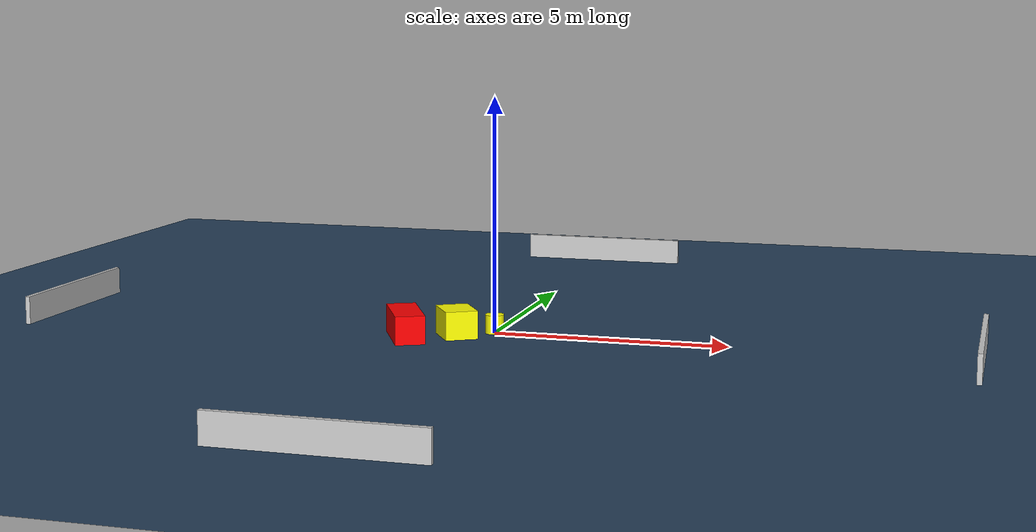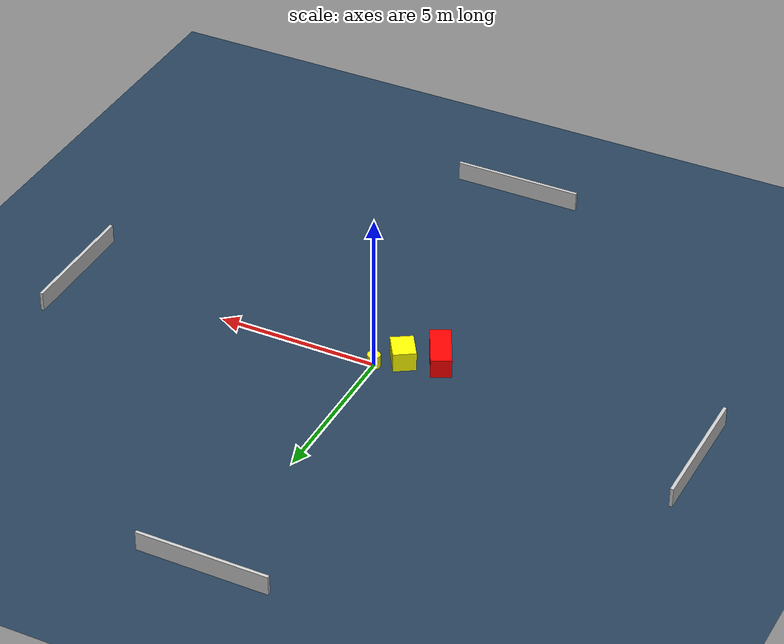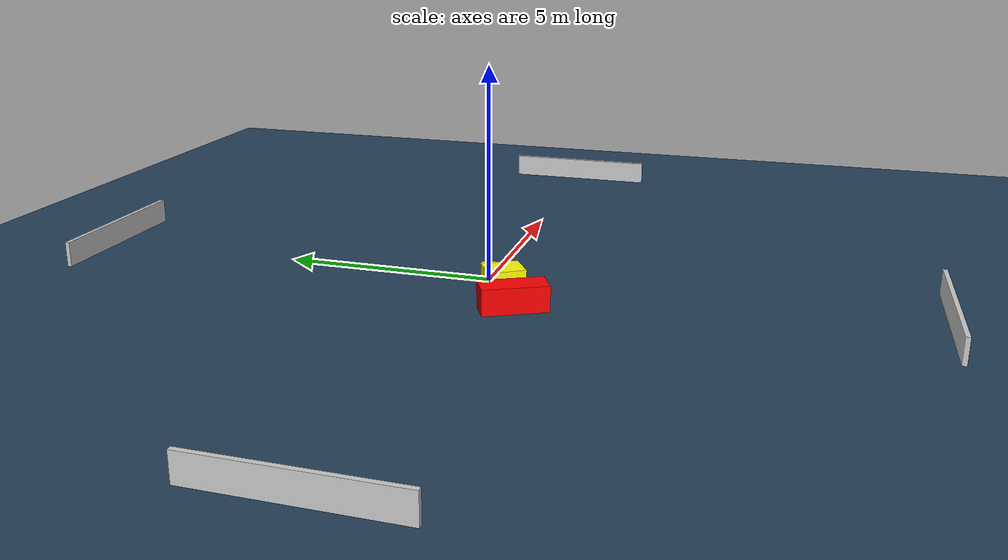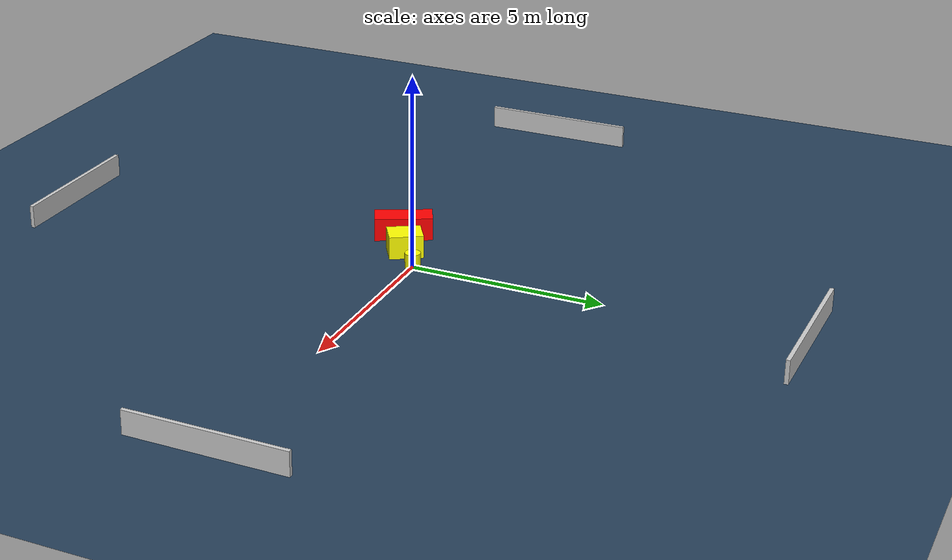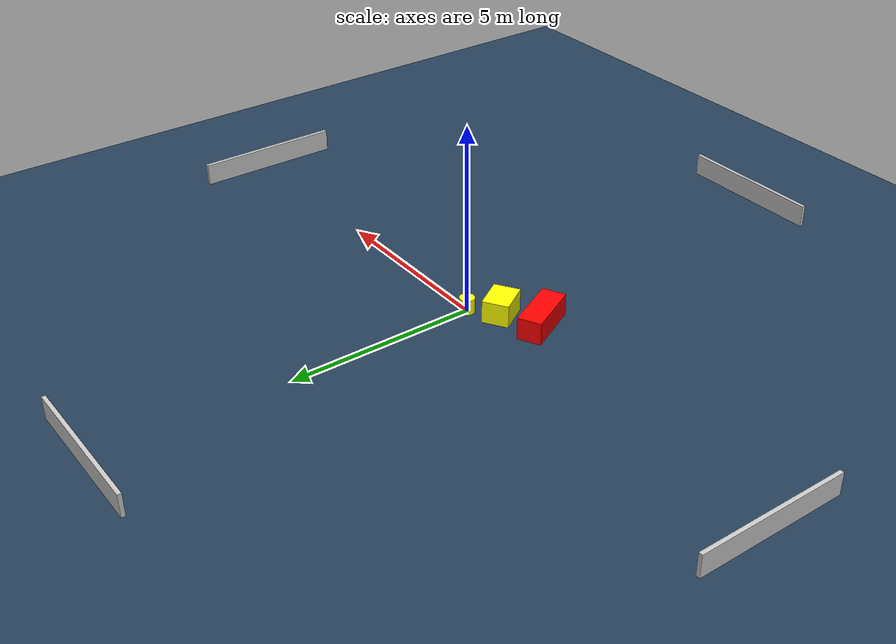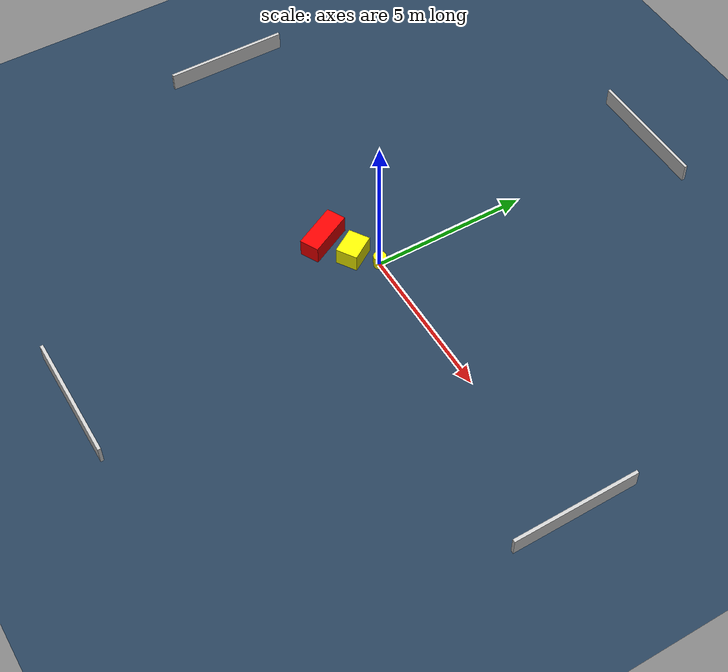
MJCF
<?xml version="1.0" ?>
<mujoco model="generated_environment">
  <option timestep="0.01" integrator="RK4" cone="elliptic"/>
  <default>
    <geom density="1"/>
  </default>
  <asset>
    <texture builtin="gradient" height="3072" name="skybox" rgb1="0.3 0.5 0.7" rgb2="0 0 0" type="skybox" width="512"/>
    <texture builtin="checker" height="300" name="groundplane" rgb1="0.2 0.3 0.4" rgb2="0.1 0.2 0.3" type="2d" width="300"/>
    <material name="groundplane" reflectance="0.2" texrepeat="5 5" texture="groundplane"/>
  </asset>
  <worldbody>
    <light dir="0 0 -1" directional="true" pos="0 0 1.5"/>
    <geom condim="3" friction="0.5 0.005 0.001" material="groundplane" name="floor" pos="0 0 0" size="0 0 0.05" type="plane"/>
    <body name="walls">
      <geom name="wall_1" condim="4" pos="-10.0 0.0 0.3" rgba="0.800000011920929 0.800000011920929 0.800000011920929 1.0" size="0.05 2.0 0.3" type="box"/>
      <geom name="wall_2" condim="4" pos="10.0 0.0 0.3" rgba="0.800000011920929 0.800000011920929 0.800000011920929 1.0" size="0.05 2.0 0.3" type="box"/>
      <geom name="wall_3" condim="4" pos="0.0 -10.0 0.3" rgba="0.800000011920929 0.800000011920929 0.800000011920929 1.0" size="2.0 0.05 0.3" type="box"/>
      <geom name="wall_4" condim="4" pos="0.0 10.0 0.3" rgba="0.800000011920929 0.800000011920929 0.800000011920929 1.0" size="2.0 0.05 0.3" type="box"/>
    </body>
    <body name="robot">
      <joint name="joint_x" type="slide" pos="0 0 0" axis="1 0 0"/>
      <joint name="joint_y" type="slide" pos="0 0 0" axis="0 1 0"/>
      <geom name="robot" type="cylinder" pos="0.0 0.0 0.2" size="0.2 0.2 0.0" mass="5.0" friction="1.0 0.005 0.0001" condim="4" rgba="1.0 1.0 0.0 1.0"/>
    </body>
    <body name="obstacle_1_movable">
      <geom name="obstacle_1_movable" condim="4" pos="-0.6768721965666857 -0.5341328611684742 0.3" euler="0 0 32.29966260825515" friction="0.0 0.005 0.001" rgba="1.0 1.0 0.0 1.0" size="0.34609200471319523 0.43640874120851586 0.3" type="box" mass="0.1"/>
      <joint type="free"/>
    </body>
    <body name="obstacle_2_static">
      <geom name="obstacle_2_static" condim="4" pos="-1.6397876195822156 -1.0296189769737787 0.3" euler="0 0 116.92356432487759" friction="0.0 0.005 0.001" rgba="1.0 0.0 0.0 1.0" size="0.7477280090505873 0.31306309549713945 0.3" type="box"/>
    </body>
  </worldbody>
  <actuator>
    <motor name="actuator_x" joint="joint_x" gear="1" ctrlrange="-1 1"/>
    <motor name="actuator_y" joint="joint_y" gear="1" ctrlrange="-1 1"/>
  </actuator>
</mujoco>
